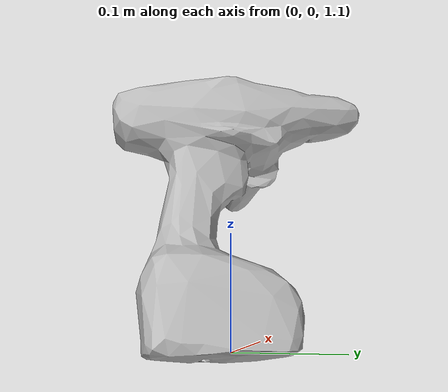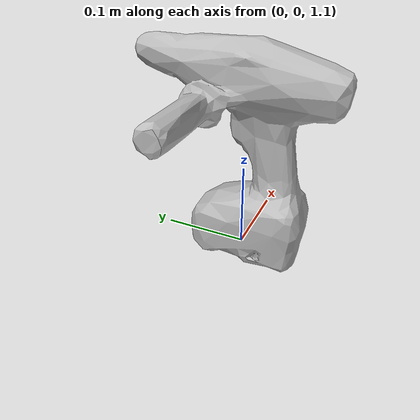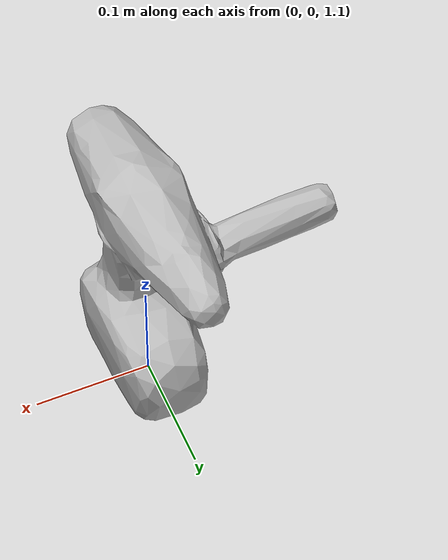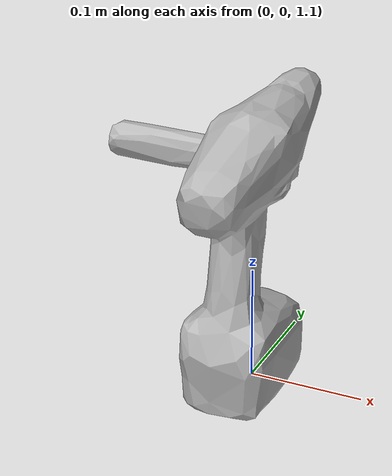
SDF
<?xml version='1.0'?>
<sdf version='1.8'>
  <model name='cordless_drill'>
    <pose>0 0 1 0 0 0</pose>
    <link name='the_link'>
      <visual name='the_visual'>
        <geometry>
          <mesh>
            <uri>model://cordless_drill/meshes/cordless_drill.dae</uri>
          </mesh>
        </geometry>
      </visual>
      <collision name='the_collision'>
        <geometry>
          <mesh>
            <uri>model://cordless_drill/meshes/cordless_drill.dae</uri>
          </mesh>
        </geometry>
      </collision>
    </link>
  </model>
</sdf>
